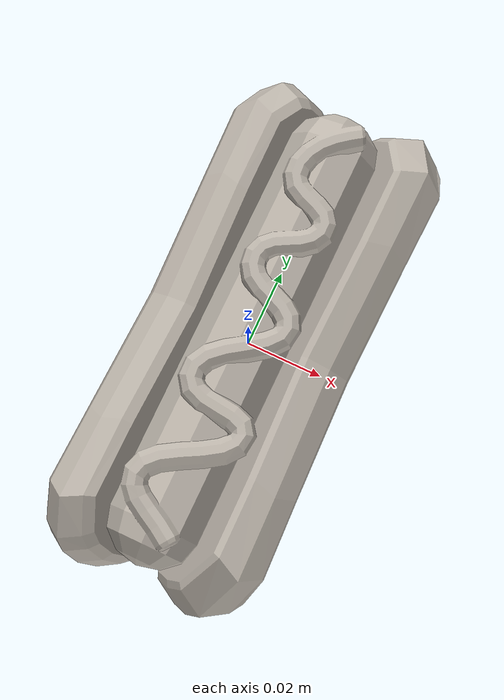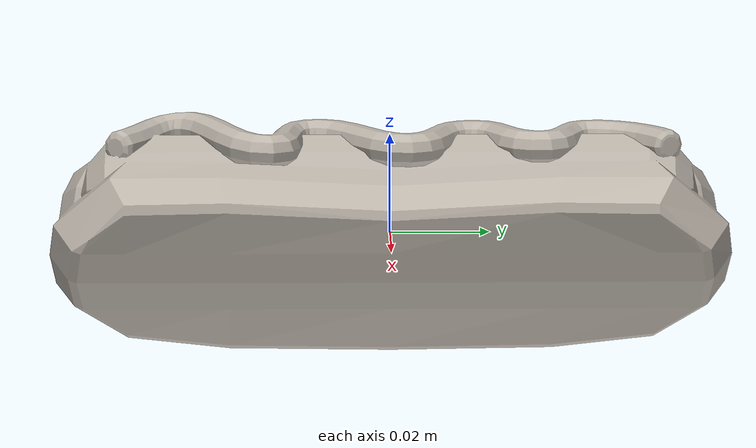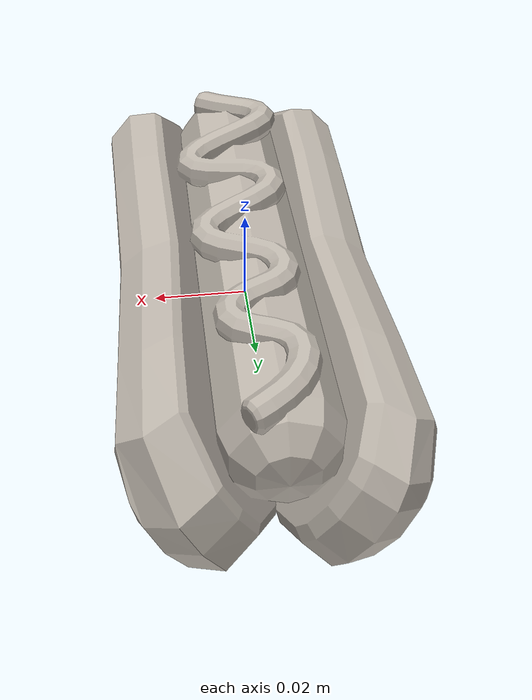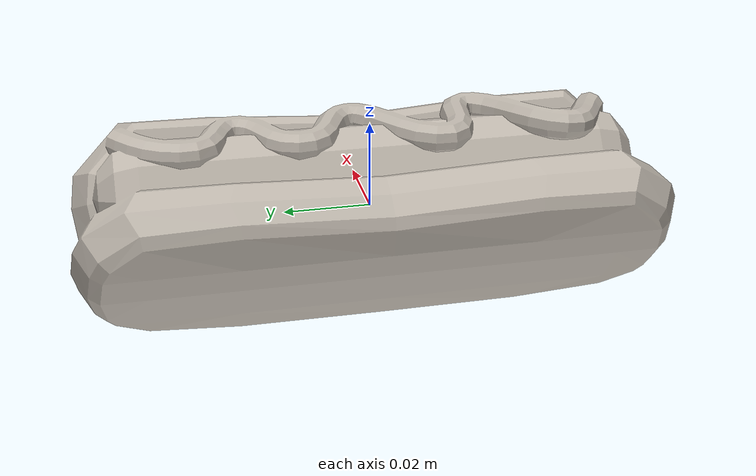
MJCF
<mujoco model="hot_dog_2">
    <compiler angle="radian"/>
  <default>
    <default class="visual">
      <geom group="1" type="mesh" contype="0" conaffinity="0"  mass="0.01"/>
    </default>
    <default class="collision">
    <geom group="0" type="mesh" solref="0.001 2"  solimp="0.998 0.998 0.001" mass="0.01"/>
    </default>
    <default class="grasppoint">
      <site type="sphere" size="0.01" group="4" rgba="0 0 1 1"/>
    </default>
  </default>
  <asset>
    <mesh file="visual/model_normalized_0.obj" name="model_normalized_0_vis" scale="0.13499999999999995 0.13499999999999995 0.13499999999999995" refquat="0.7071067811865475 0.0 0.0 0.7071067811865476"/>
    <mesh file="collision/model_normalized_collision_22.obj" name="model_normalized_collision_22._coll" scale="0.13499999999999995 0.13499999999999995 0.13499999999999995" refquat="0.7071067811865475 0.0 0.0 0.7071067811865476"/>
    <mesh file="collision/model_normalized_collision_23.obj" name="model_normalized_collision_23._coll" scale="0.13499999999999995 0.13499999999999995 0.13499999999999995" refquat="0.7071067811865475 0.0 0.0 0.7071067811865476"/>
    <mesh file="collision/model_normalized_collision_21.obj" name="model_normalized_collision_21._coll" scale="0.13499999999999995 0.13499999999999995 0.13499999999999995" refquat="0.7071067811865475 0.0 0.0 0.7071067811865476"/>
    <mesh file="collision/model_normalized_collision_20.obj" name="model_normalized_collision_20._coll" scale="0.13499999999999995 0.13499999999999995 0.13499999999999995" refquat="0.7071067811865475 0.0 0.0 0.7071067811865476"/>
    <mesh file="collision/model_normalized_collision_24.obj" name="model_normalized_collision_24._coll" scale="0.13499999999999995 0.13499999999999995 0.13499999999999995" refquat="0.7071067811865475 0.0 0.0 0.7071067811865476"/>
    <mesh file="collision/model_normalized_collision_30.obj" name="model_normalized_collision_30._coll" scale="0.13499999999999995 0.13499999999999995 0.13499999999999995" refquat="0.7071067811865475 0.0 0.0 0.7071067811865476"/>
    <mesh file="collision/model_normalized_collision_18.obj" name="model_normalized_collision_18._coll" scale="0.13499999999999995 0.13499999999999995 0.13499999999999995" refquat="0.7071067811865475 0.0 0.0 0.7071067811865476"/>
    <mesh file="collision/model_normalized_collision_19.obj" name="model_normalized_collision_19._coll" scale="0.13499999999999995 0.13499999999999995 0.13499999999999995" refquat="0.7071067811865475 0.0 0.0 0.7071067811865476"/>
    <mesh file="collision/model_normalized_collision_31.obj" name="model_normalized_collision_31._coll" scale="0.13499999999999995 0.13499999999999995 0.13499999999999995" refquat="0.7071067811865475 0.0 0.0 0.7071067811865476"/>
    <mesh file="collision/model_normalized_collision_25.obj" name="model_normalized_collision_25._coll" scale="0.13499999999999995 0.13499999999999995 0.13499999999999995" refquat="0.7071067811865475 0.0 0.0 0.7071067811865476"/>
    <mesh file="collision/model_normalized_collision_27.obj" name="model_normalized_collision_27._coll" scale="0.13499999999999995 0.13499999999999995 0.13499999999999995" refquat="0.7071067811865475 0.0 0.0 0.7071067811865476"/>
    <mesh file="collision/model_normalized_collision_26.obj" name="model_normalized_collision_26._coll" scale="0.13499999999999995 0.13499999999999995 0.13499999999999995" refquat="0.7071067811865475 0.0 0.0 0.7071067811865476"/>
    <mesh file="collision/model_normalized_collision_9.obj" name="model_normalized_collision_9._coll" scale="0.13499999999999995 0.13499999999999995 0.13499999999999995" refquat="0.7071067811865475 0.0 0.0 0.7071067811865476"/>
    <mesh file="collision/model_normalized_collision_8.obj" name="model_normalized_collision_8._coll" scale="0.13499999999999995 0.13499999999999995 0.13499999999999995" refquat="0.7071067811865475 0.0 0.0 0.7071067811865476"/>
    <mesh file="collision/model_normalized_collision_6.obj" name="model_normalized_collision_6._coll" scale="0.13499999999999995 0.13499999999999995 0.13499999999999995" refquat="0.7071067811865475 0.0 0.0 0.7071067811865476"/>
    <mesh file="collision/model_normalized_collision_7.obj" name="model_normalized_collision_7._coll" scale="0.13499999999999995 0.13499999999999995 0.13499999999999995" refquat="0.7071067811865475 0.0 0.0 0.7071067811865476"/>
    <mesh file="collision/model_normalized_collision_5.obj" name="model_normalized_collision_5._coll" scale="0.13499999999999995 0.13499999999999995 0.13499999999999995" refquat="0.7071067811865475 0.0 0.0 0.7071067811865476"/>
    <mesh file="collision/model_normalized_collision_4.obj" name="model_normalized_collision_4._coll" scale="0.13499999999999995 0.13499999999999995 0.13499999999999995" refquat="0.7071067811865475 0.0 0.0 0.7071067811865476"/>
    <mesh file="collision/model_normalized_collision_0.obj" name="model_normalized_collision_0._coll" scale="0.13499999999999995 0.13499999999999995 0.13499999999999995" refquat="0.7071067811865475 0.0 0.0 0.7071067811865476"/>
    <mesh file="collision/model_normalized_collision_1.obj" name="model_normalized_collision_1._coll" scale="0.13499999999999995 0.13499999999999995 0.13499999999999995" refquat="0.7071067811865475 0.0 0.0 0.7071067811865476"/>
    <mesh file="collision/model_normalized_collision_3.obj" name="model_normalized_collision_3._coll" scale="0.13499999999999995 0.13499999999999995 0.13499999999999995" refquat="0.7071067811865475 0.0 0.0 0.7071067811865476"/>
    <mesh file="collision/model_normalized_collision_2.obj" name="model_normalized_collision_2._coll" scale="0.13499999999999995 0.13499999999999995 0.13499999999999995" refquat="0.7071067811865475 0.0 0.0 0.7071067811865476"/>
    <mesh file="collision/model_normalized_collision_17.obj" name="model_normalized_collision_17._coll" scale="0.13499999999999995 0.13499999999999995 0.13499999999999995" refquat="0.7071067811865475 0.0 0.0 0.7071067811865476"/>
    <mesh file="collision/model_normalized_collision_16.obj" name="model_normalized_collision_16._coll" scale="0.13499999999999995 0.13499999999999995 0.13499999999999995" refquat="0.7071067811865475 0.0 0.0 0.7071067811865476"/>
    <mesh file="collision/model_normalized_collision_28.obj" name="model_normalized_collision_28._coll" scale="0.13499999999999995 0.13499999999999995 0.13499999999999995" refquat="0.7071067811865475 0.0 0.0 0.7071067811865476"/>
    <mesh file="collision/model_normalized_collision_14.obj" name="model_normalized_collision_14._coll" scale="0.13499999999999995 0.13499999999999995 0.13499999999999995" refquat="0.7071067811865475 0.0 0.0 0.7071067811865476"/>
    <mesh file="collision/model_normalized_collision_15.obj" name="model_normalized_collision_15._coll" scale="0.13499999999999995 0.13499999999999995 0.13499999999999995" refquat="0.7071067811865475 0.0 0.0 0.7071067811865476"/>
    <mesh file="collision/model_normalized_collision_29.obj" name="model_normalized_collision_29._coll" scale="0.13499999999999995 0.13499999999999995 0.13499999999999995" refquat="0.7071067811865475 0.0 0.0 0.7071067811865476"/>
    <mesh file="collision/model_normalized_collision_11.obj" name="model_normalized_collision_11._coll" scale="0.13499999999999995 0.13499999999999995 0.13499999999999995" refquat="0.7071067811865475 0.0 0.0 0.7071067811865476"/>
    <mesh file="collision/model_normalized_collision_10.obj" name="model_normalized_collision_10._coll" scale="0.13499999999999995 0.13499999999999995 0.13499999999999995" refquat="0.7071067811865475 0.0 0.0 0.7071067811865476"/>
    <mesh file="collision/model_normalized_collision_12.obj" name="model_normalized_collision_12._coll" scale="0.13499999999999995 0.13499999999999995 0.13499999999999995" refquat="0.7071067811865475 0.0 0.0 0.7071067811865476"/>
    <mesh file="collision/model_normalized_collision_13.obj" name="model_normalized_collision_13._coll" scale="0.13499999999999995 0.13499999999999995 0.13499999999999995" refquat="0.7071067811865475 0.0 0.0 0.7071067811865476"/>
    <texture type="2d" name="image0" file="visual/image0.png"/>
    <material name="initialShadingGroup.006" texture="image0" specular="0.5" shininess="0.25"/>
  </asset>
  <worldbody>
  <body>
      <body name="object">
        <geom solimp="0.998 0.998 0.001" solref="0.001 1" density="100" friction="0.95 0.3 0.1" type="mesh" mesh="model_normalized_0_vis" conaffinity="0" contype="0" group="1" material="initialShadingGroup.006"/>
        <geom solimp="0.998 0.998 0.001" solref="0.001 1" density="100" friction="0.95 0.3 0.1" type="mesh" mesh="model_normalized_collision_22._coll" group="0" rgba="0.8 0.8 0.8 0.0"/>
        <geom solimp="0.998 0.998 0.001" solref="0.001 1" density="100" friction="0.95 0.3 0.1" type="mesh" mesh="model_normalized_collision_23._coll" group="0" rgba="0.8 0.8 0.8 0.0"/>
        <geom solimp="0.998 0.998 0.001" solref="0.001 1" density="100" friction="0.95 0.3 0.1" type="mesh" mesh="model_normalized_collision_21._coll" group="0" rgba="0.8 0.8 0.8 0.0"/>
        <geom solimp="0.998 0.998 0.001" solref="0.001 1" density="100" friction="0.95 0.3 0.1" type="mesh" mesh="model_normalized_collision_20._coll" group="0" rgba="0.8 0.8 0.8 0.0"/>
        <geom solimp="0.998 0.998 0.001" solref="0.001 1" density="100" friction="0.95 0.3 0.1" type="mesh" mesh="model_normalized_collision_24._coll" group="0" rgba="0.8 0.8 0.8 0.0"/>
        <geom solimp="0.998 0.998 0.001" solref="0.001 1" density="100" friction="0.95 0.3 0.1" type="mesh" mesh="model_normalized_collision_30._coll" group="0" rgba="0.8 0.8 0.8 0.0"/>
        <geom solimp="0.998 0.998 0.001" solref="0.001 1" density="100" friction="0.95 0.3 0.1" type="mesh" mesh="model_normalized_collision_18._coll" group="0" rgba="0.8 0.8 0.8 0.0"/>
        <geom solimp="0.998 0.998 0.001" solref="0.001 1" density="100" friction="0.95 0.3 0.1" type="mesh" mesh="model_normalized_collision_19._coll" group="0" rgba="0.8 0.8 0.8 0.0"/>
        <geom solimp="0.998 0.998 0.001" solref="0.001 1" density="100" friction="0.95 0.3 0.1" type="mesh" mesh="model_normalized_collision_31._coll" group="0" rgba="0.8 0.8 0.8 0.0"/>
        <geom solimp="0.998 0.998 0.001" solref="0.001 1" density="100" friction="0.95 0.3 0.1" type="mesh" mesh="model_normalized_collision_25._coll" group="0" rgba="0.8 0.8 0.8 0.0"/>
        <geom solimp="0.998 0.998 0.001" solref="0.001 1" density="100" friction="0.95 0.3 0.1" type="mesh" mesh="model_normalized_collision_27._coll" group="0" rgba="0.8 0.8 0.8 0.0"/>
        <geom solimp="0.998 0.998 0.001" solref="0.001 1" density="100" friction="0.95 0.3 0.1" type="mesh" mesh="model_normalized_collision_26._coll" group="0" rgba="0.8 0.8 0.8 0.0"/>
        <geom solimp="0.998 0.998 0.001" solref="0.001 1" density="100" friction="0.95 0.3 0.1" type="mesh" mesh="model_normalized_collision_9._coll" group="0" rgba="0.8 0.8 0.8 0.0"/>
        <geom solimp="0.998 0.998 0.001" solref="0.001 1" density="100" friction="0.95 0.3 0.1" type="mesh" mesh="model_normalized_collision_8._coll" group="0" rgba="0.8 0.8 0.8 0.0"/>
        <geom solimp="0.998 0.998 0.001" solref="0.001 1" density="100" friction="0.95 0.3 0.1" type="mesh" mesh="model_normalized_collision_6._coll" group="0" rgba="0.8 0.8 0.8 0.0"/>
        <geom solimp="0.998 0.998 0.001" solref="0.001 1" density="100" friction="0.95 0.3 0.1" type="mesh" mesh="model_normalized_collision_7._coll" group="0" rgba="0.8 0.8 0.8 0.0"/>
        <geom solimp="0.998 0.998 0.001" solref="0.001 1" density="100" friction="0.95 0.3 0.1" type="mesh" mesh="model_normalized_collision_5._coll" group="0" rgba="0.8 0.8 0.8 0.0"/>
        <geom solimp="0.998 0.998 0.001" solref="0.001 1" density="100" friction="0.95 0.3 0.1" type="mesh" mesh="model_normalized_collision_4._coll" group="0" rgba="0.8 0.8 0.8 0.0"/>
        <geom solimp="0.998 0.998 0.001" solref="0.001 1" density="100" friction="0.95 0.3 0.1" type="mesh" mesh="model_normalized_collision_0._coll" group="0" rgba="0.8 0.8 0.8 0.0"/>
        <geom solimp="0.998 0.998 0.001" solref="0.001 1" density="100" friction="0.95 0.3 0.1" type="mesh" mesh="model_normalized_collision_1._coll" group="0" rgba="0.8 0.8 0.8 0.0"/>
        <geom solimp="0.998 0.998 0.001" solref="0.001 1" density="100" friction="0.95 0.3 0.1" type="mesh" mesh="model_normalized_collision_3._coll" group="0" rgba="0.8 0.8 0.8 0.0"/>
        <geom solimp="0.998 0.998 0.001" solref="0.001 1" density="100" friction="0.95 0.3 0.1" type="mesh" mesh="model_normalized_collision_2._coll" group="0" rgba="0.8 0.8 0.8 0.0"/>
        <geom solimp="0.998 0.998 0.001" solref="0.001 1" density="100" friction="0.95 0.3 0.1" type="mesh" mesh="model_normalized_collision_17._coll" group="0" rgba="0.8 0.8 0.8 0.0"/>
        <geom solimp="0.998 0.998 0.001" solref="0.001 1" density="100" friction="0.95 0.3 0.1" type="mesh" mesh="model_normalized_collision_16._coll" group="0" rgba="0.8 0.8 0.8 0.0"/>
        <geom solimp="0.998 0.998 0.001" solref="0.001 1" density="100" friction="0.95 0.3 0.1" type="mesh" mesh="model_normalized_collision_28._coll" group="0" rgba="0.8 0.8 0.8 0.0"/>
        <geom solimp="0.998 0.998 0.001" solref="0.001 1" density="100" friction="0.95 0.3 0.1" type="mesh" mesh="model_normalized_collision_14._coll" group="0" rgba="0.8 0.8 0.8 0.0"/>
        <geom solimp="0.998 0.998 0.001" solref="0.001 1" density="100" friction="0.95 0.3 0.1" type="mesh" mesh="model_normalized_collision_15._coll" group="0" rgba="0.8 0.8 0.8 0.0"/>
        <geom solimp="0.998 0.998 0.001" solref="0.001 1" density="100" friction="0.95 0.3 0.1" type="mesh" mesh="model_normalized_collision_29._coll" group="0" rgba="0.8 0.8 0.8 0.0"/>
        <geom solimp="0.998 0.998 0.001" solref="0.001 1" density="100" friction="0.95 0.3 0.1" type="mesh" mesh="model_normalized_collision_11._coll" group="0" rgba="0.8 0.8 0.8 0.0"/>
        <geom solimp="0.998 0.998 0.001" solref="0.001 1" density="100" friction="0.95 0.3 0.1" type="mesh" mesh="model_normalized_collision_10._coll" group="0" rgba="0.8 0.8 0.8 0.0"/>
        <geom solimp="0.998 0.998 0.001" solref="0.001 1" density="100" friction="0.95 0.3 0.1" type="mesh" mesh="model_normalized_collision_12._coll" group="0" rgba="0.8 0.8 0.8 0.0"/>
        <geom solimp="0.998 0.998 0.001" solref="0.001 1" density="100" friction="0.95 0.3 0.1" type="mesh" mesh="model_normalized_collision_13._coll" group="0" rgba="0.8 0.8 0.8 0.0"/>
      </body>
      <site rgba="0 0 0 0" size="0.005" pos="0.00023923687499999985 0.0002845698750000013 -0.022134157199999994" name="bottom_site"/>
      <site rgba="0 0 0 0" size="0.005" pos="0.00023923687499999985 0.0002845698750000013 0.022844218049999997" name="top_site"/>
      <site rgba="0 0 0 0" size="0.005" pos="0.02808016199999999 0.06708138794999997 0.0003550304249999999" name="horizontal_radius_site"/>
    </body>
    </worldbody>
</mujoco>
